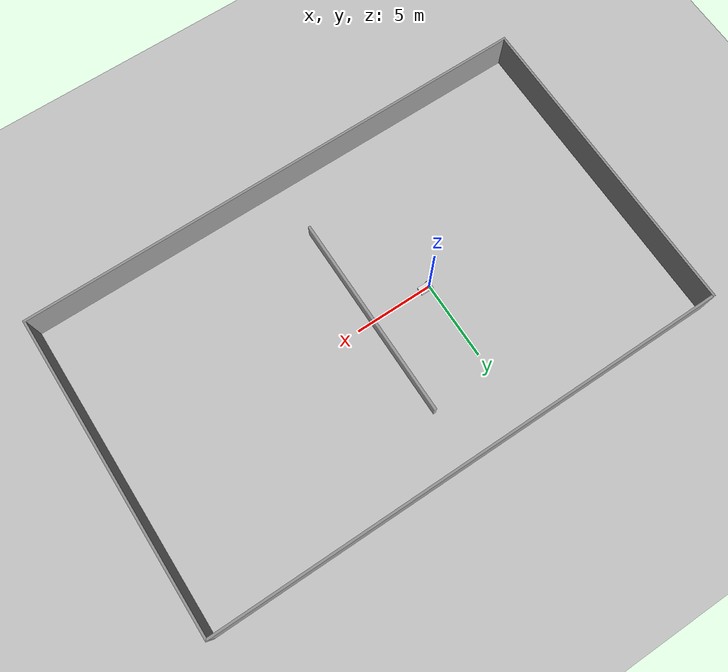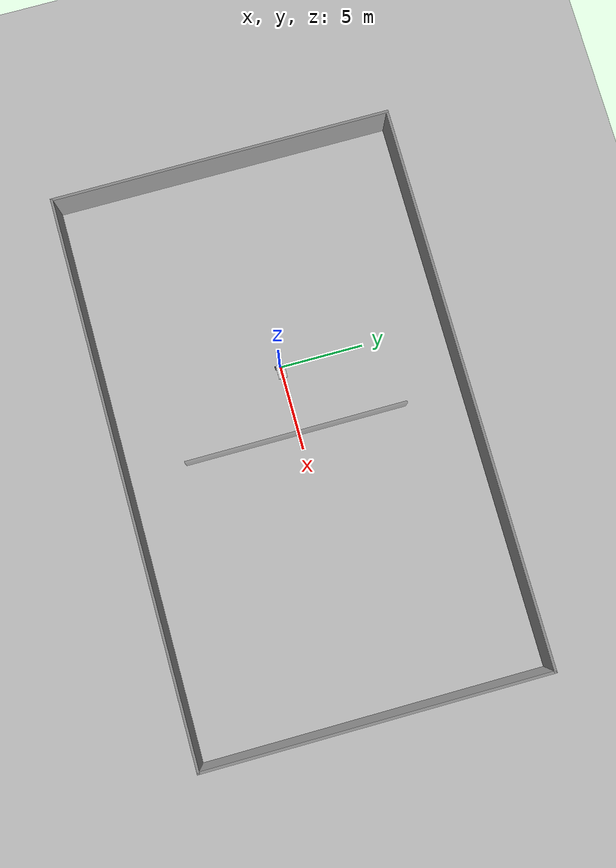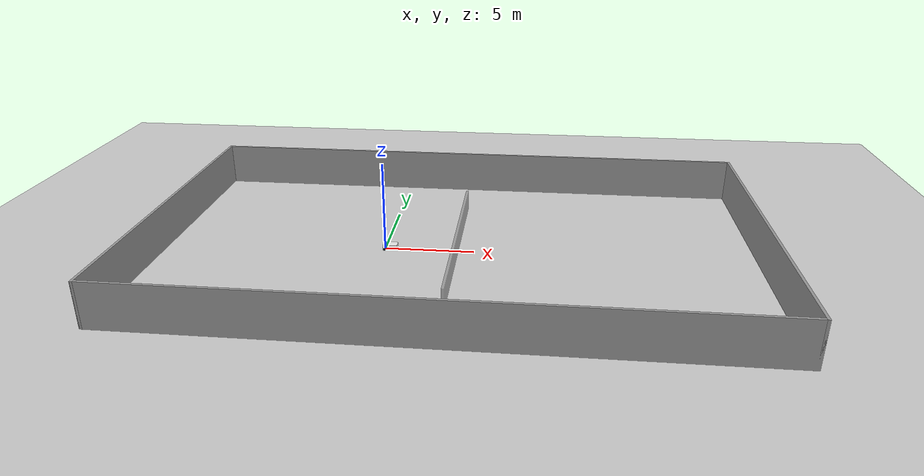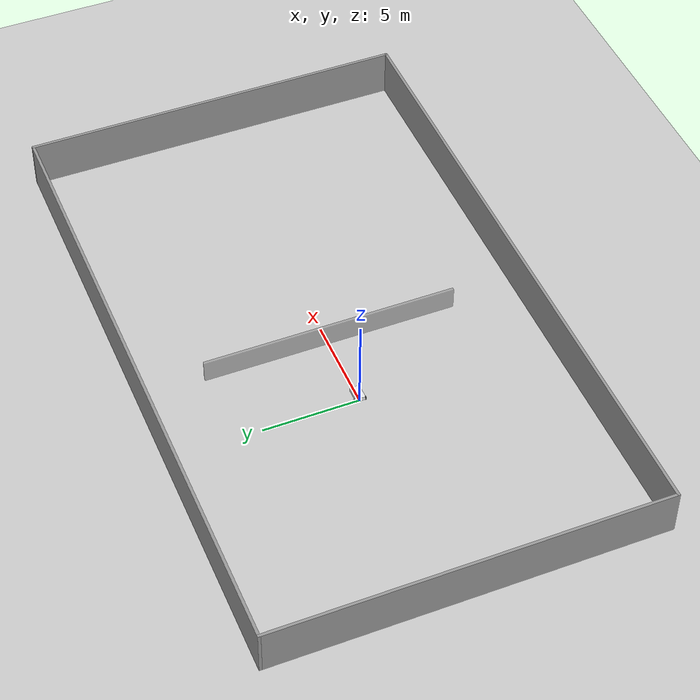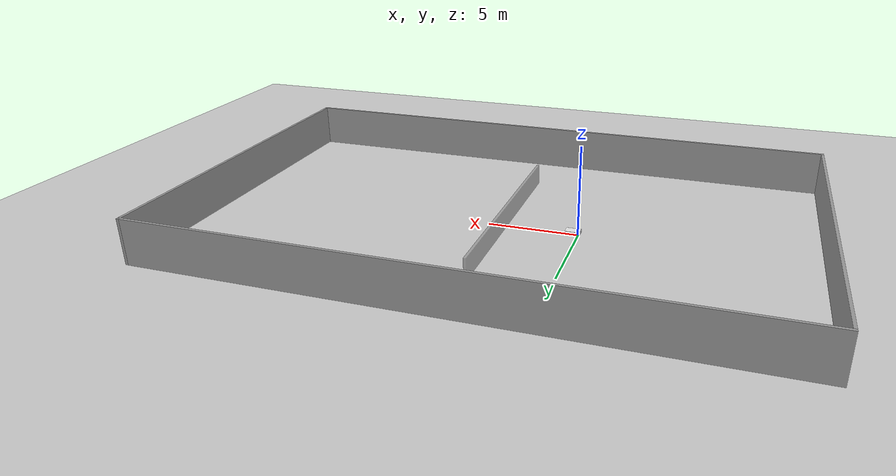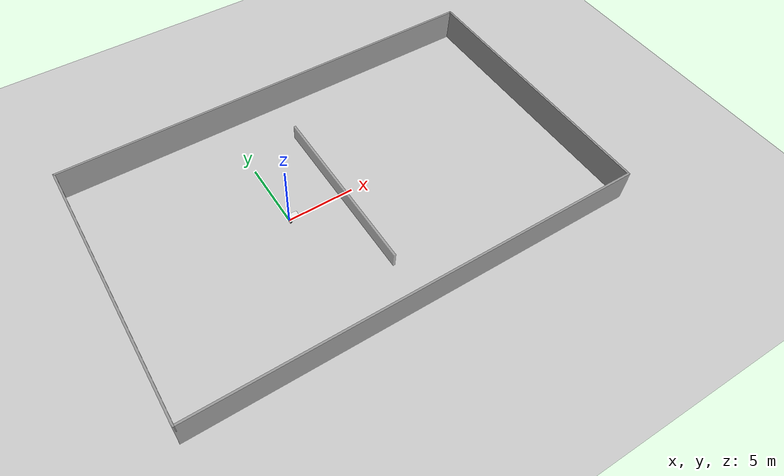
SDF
<sdf version="1.7">
 <world name="default">
  <light name="sun" type="directional">
   <pose>0 0 10 0 -0 0</pose>
   <diffuse>0.8 0.8 0.8 1</diffuse>
   <specular>0.2 0.2 0.2 1</specular>
   <attenuation>
    <range>1000</range>
    <constant>0.9</constant>
    <linear>0.01</linear>
    <quadratic>0.001</quadratic>
   </attenuation>
   <direction>-0.5 0.1 -0.9</direction>
   <spot><inner_angle>0</inner_angle><outer_angle>0</outer_angle><falloff>0</falloff></spot>
  </light>
  <model name="ground_plane">
   <static>1</static>
   <link name="link">
    <collision name="collision">
     <geometry><plane><normal>0 0 1</normal><size>100 100</size></plane></geometry>
     <surface>
      <contact><collide_bitmask>65535</collide_bitmask></contact>
      <friction><ode><mu>100</mu><mu2>50</mu2></ode></friction>
     </surface>
    </collision>
    <visual name="visual">
     <cast_shadows>0</cast_shadows>
     <geometry><plane><normal>0 0 1</normal><size>100 100</size></plane></geometry>
     <material>
      <script><uri>file://media/materials/scripts/gazebo.material</uri><name>Gazebo/Grey</name></script>
     </material>
    </visual>
   </link>
  </model>
  <gravity>0 0 -9.8</gravity>
  <magnetic_field>6e-06 2.3e-05 -4.2e-05</magnetic_field>
  <atmosphere type="adiabatic"/>
  <physics type="ode">
   <max_step_size>0.001</max_step_size>
   <real_time_factor>1</real_time_factor>
   <real_time_update_rate>1000</real_time_update_rate>
  </physics>
  <scene><ambient>0.4 0.4 0.4 1</ambient><background>0.7 0.7 0.7 1</background><shadows>1</shadows></scene>
  <audio><device>default</device></audio>
  <spherical_coordinates>
   <surface_model>EARTH_WGS84</surface_model>
   <latitude_deg>0</latitude_deg>
   <longitude_deg>0</longitude_deg>
   <elevation>0</elevation>
   <heading_deg>0</heading_deg>
  </spherical_coordinates>
  <model name="my_bot">
   <link name="base_link">
    <inertial>
     <pose>0.298077 0 0.10024 0 -0 0</pose>
     <mass>5.2</mass>
     <inertia>
      <ixx>0.123574</ixx>
      <ixy>0</ixy>
      <ixz>0.0053726</ixz>
      <iyy>0.299055</iyy>
      <iyz>0</iyz>
      <izz>0.384339</izz>
     </inertia>
    </inertial>
    <collision name="base_link_fixed_joint_lump__chassis_collision">
     <pose>0.3 0 0.1 0 -0 0</pose>
     <geometry><box><size>0.8 0.5 0.2</size></box></geometry>
    </collision>
    <collision name="base_link_fixed_joint_lump__caster_wheel_collision_1">
     <pose>0.5 0 0 0 -0 0</pose>
     <geometry><sphere><radius>0.1</radius></sphere></geometry>
     <surface><friction><ode><mu>0.001</mu><mu2>0.001</mu2></ode></friction></surface>
    </collision>
    <collision name="base_link_fixed_joint_lump__laser_frame_collision_2">
     <pose>0 0 0.2125 0 -0 0</pose>
     <geometry><cylinder><length>0.04</length><radius>0.05</radius></cylinder></geometry>
    </collision>
    <visual name="base_link_fixed_joint_lump__chassis_visual">
     <pose>0.3 0 0.1 0 -0 0</pose>
     <geometry><box><size>0.8 0.5 0.2</size></box></geometry>
     <material>
      <script><name>Gazebo/White</name><uri>file://media/materials/scripts/gazebo.material</uri></script>
     </material>
    </visual>
    <visual name="base_link_fixed_joint_lump__caster_wheel_visual_1">
     <pose>0.5 0 0 0 -0 0</pose>
     <geometry><sphere><radius>0.1</radius></sphere></geometry>
     <material>
      <script><name>Gazebo/Black</name><uri>file://media/materials/scripts/gazebo.material</uri></script>
     </material>
    </visual>
    <visual name="base_link_fixed_joint_lump__laser_frame_visual_2">
     <pose>0 0 0.2125 0 -0 0</pose>
     <geometry><cylinder><length>0.04</length><radius>0.05</radius></cylinder></geometry>
     <material>
      <script><name>Gazebo/Red</name><uri>file://media/materials/scripts/gazebo.material</uri></script>
     </material>
    </visual>
    <sensor name="laser" type="ray">
     <visualize>1</visualize>
     <update_rate>10</update_rate>
     <ray>
      <scan>
       <horizontal>
        <samples>360</samples>
        <min_angle>-3.14</min_angle>
        <max_angle>3.14</max_angle>
        <resolution>1</resolution>
       </horizontal>
       <vertical><samples>1</samples><min_angle>0</min_angle><max_angle>0</max_angle></vertical>
      </scan>
      <range><min>0.3</min><max>8</max></range>
     </ray>
     <plugin name="laser_controller" filename="libgazebo_ros_ray_sensor.so">
      <ros><argument>~/out:=scan</argument></ros>
      <output_type>sensor_msgs/LaserScan</output_type>
      <frame_name>laser_frame</frame_name>
     </plugin>
     <pose>0 0 0.2125 0 -0 0</pose>
    </sensor>
   </link>
   <joint name="left_wheel_joint" type="revolute">
    <pose relative_to="base_link">0 0.279 0 -1.5708 0 0</pose>
    <parent>base_link</parent>
    <child>left_wheel</child>
    <axis>
     <xyz>0 0 1</xyz>
     <limit><lower>-1e+16</lower><upper>1e+16</upper></limit>
     <dynamics><spring_reference>0</spring_reference><spring_stiffness>0</spring_stiffness></dynamics>
    </axis>
   </joint>
   <link name="left_wheel">
    <pose relative_to="left_wheel_joint">0 0 0 0 -0 0</pose>
    <inertial>
     <mass>0.1</mass>
     <inertia>
      <ixx>0.000290833</ixx>
      <ixy>0</ixy>
      <ixz>0</ixz>
      <iyy>0.000290833</iyy>
      <iyz>0</iyz>
      <izz>0.0005</izz>
     </inertia>
    </inertial>
    <collision name="left_wheel_collision">
     <geometry><cylinder><length>0.07</length><radius>0.1</radius></cylinder></geometry>
    </collision>
    <visual name="left_wheel_visual">
     <geometry><cylinder><length>0.07</length><radius>0.1</radius></cylinder></geometry>
     <material>
      <script><name>Gazebo/Black</name><uri>file://media/materials/scripts/gazebo.material</uri></script>
     </material>
    </visual>
   </link>
   <joint name="right_wheel_joint" type="revolute">
    <pose relative_to="base_link">0 -0.279 0 1.5708 -0 0</pose>
    <parent>base_link</parent>
    <child>right_wheel</child>
    <axis>
     <xyz>0 0 -1</xyz>
     <limit><lower>-1e+16</lower><upper>1e+16</upper></limit>
     <dynamics><spring_reference>0</spring_reference><spring_stiffness>0</spring_stiffness></dynamics>
    </axis>
   </joint>
   <link name="right_wheel">
    <pose relative_to="right_wheel_joint">0 0 0 0 -0 0</pose>
    <inertial>
     <mass>0.1</mass>
     <inertia>
      <ixx>0.000290833</ixx>
      <ixy>0</ixy>
      <ixz>0</ixz>
      <iyy>0.000290833</iyy>
      <iyz>0</iyz>
      <izz>0.0005</izz>
     </inertia>
    </inertial>
    <collision name="right_wheel_collision">
     <geometry><cylinder><length>0.07</length><radius>0.1</radius></cylinder></geometry>
    </collision>
    <visual name="right_wheel_visual">
     <geometry><cylinder><length>0.07</length><radius>0.1</radius></cylinder></geometry>
     <material>
      <script><name>Gazebo/Black</name><uri>file://media/materials/scripts/gazebo.material</uri></script>
     </material>
    </visual>
   </link>
   <static>0</static>
   <plugin name="gazebo_ros2_control" filename="libgazebo_ros2_control.so">
    <parameters>/home/lars/dev-ws/install/Tennis_Bot/share/Tennis_Bot/config/my_controllers.yaml</parameters>
   </plugin>
   <pose>-0.011312 -0.000119 0.100001 0 2.1e-05 -8.6e-05</pose>
  </model>
  <model name="Tennis_Feld">
   <link name="Wall_0">
    <pose>-16.5 0 0 0 0 -1.5708</pose>
    <visual name="Wall_0_Visual">
     <pose>0 0 1.25 0 -0 0</pose>
     <geometry><box><size>20.15 0.15 2.5</size></box></geometry>
     <material>
      <script><uri>file://media/materials/scripts/gazebo.material</uri><name>Gazebo/Grey</name></script>
      <ambient>1 1 1 1</ambient>
      <shader type="pixel"/>
     </material>
     <meta><layer>0</layer></meta>
    </visual>
    <collision name="Wall_0_Collision">
     <pose>0 0 1.25 0 -0 0</pose>
     <geometry><box><size>20.15 0.15 2.5</size></box></geometry>
     <surface>
      <friction>
       <ode><mu>1</mu><mu2>1</mu2><fdir1>0 0 0</fdir1><slip1>0</slip1><slip2>0</slip2></ode>
       <torsional>
        <coefficient>1</coefficient>
        <patch_radius>0</patch_radius>
        <surface_radius>0</surface_radius>
        <use_patch_radius>1</use_patch_radius>
        <ode><slip>0</slip></ode>
       </torsional>
      </friction>
      <bounce><restitution_coefficient>0</restitution_coefficient><threshold>1e+06</threshold></bounce>
      <contact>
       <collide_without_contact>0</collide_without_contact>
       <collide_without_contact_bitmask>1</collide_without_contact_bitmask>
       <collide_bitmask>1</collide_bitmask>
       <ode>
        <soft_cfm>0</soft_cfm>
        <soft_erp>0.2</soft_erp>
        <kp>1e+13</kp>
        <kd>1</kd>
        <max_vel>0.01</max_vel>
        <min_depth>0</min_depth>
       </ode>
       <bullet>
        <split_impulse>1</split_impulse>
        <split_impulse_penetration_threshold>-0.01</split_impulse_penetration_threshold>
        <soft_cfm>0</soft_cfm>
        <soft_erp>0.2</soft_erp>
        <kp>1e+13</kp>
        <kd>1</kd>
       </bullet>
      </contact>
     </surface>
    </collision>
   </link>
   <link name="Wall_1">
    <pose>0 -10 0 0 -0 0</pose>
    <visual name="Wall_1_Visual">
     <pose>0 0 1.25 0 -0 0</pose>
     <geometry><box><size>33.15 0.15 2.5</size></box></geometry>
     <material>
      <script><uri>file://media/materials/scripts/gazebo.material</uri><name>Gazebo/Grey</name></script>
      <ambient>1 1 1 1</ambient>
      <shader type="pixel"/>
     </material>
     <meta><layer>0</layer></meta>
    </visual>
    <collision name="Wall_1_Collision">
     <pose>0 0 1.25 0 -0 0</pose>
     <geometry><box><size>33.15 0.15 2.5</size></box></geometry>
     <surface>
      <friction>
       <ode><mu>1</mu><mu2>1</mu2><fdir1>0 0 0</fdir1><slip1>0</slip1><slip2>0</slip2></ode>
       <torsional>
        <coefficient>1</coefficient>
        <patch_radius>0</patch_radius>
        <surface_radius>0</surface_radius>
        <use_patch_radius>1</use_patch_radius>
        <ode><slip>0</slip></ode>
       </torsional>
      </friction>
      <bounce><restitution_coefficient>0</restitution_coefficient><threshold>1e+06</threshold></bounce>
      <contact>
       <collide_without_contact>0</collide_without_contact>
       <collide_without_contact_bitmask>1</collide_without_contact_bitmask>
       <collide_bitmask>1</collide_bitmask>
       <ode>
        <soft_cfm>0</soft_cfm>
        <soft_erp>0.2</soft_erp>
        <kp>1e+13</kp>
        <kd>1</kd>
        <max_vel>0.01</max_vel>
        <min_depth>0</min_depth>
       </ode>
       <bullet>
        <split_impulse>1</split_impulse>
        <split_impulse_penetration_threshold>-0.01</split_impulse_penetration_threshold>
        <soft_cfm>0</soft_cfm>
        <soft_erp>0.2</soft_erp>
        <kp>1e+13</kp>
        <kd>1</kd>
       </bullet>
      </contact>
     </surface>
    </collision>
   </link>
   <link name="Wall_2">
    <pose>16.5 0 0 0 -0 1.5708</pose>
    <inertial>
     <mass>1</mass>
     <inertia><ixx>1</ixx><ixy>0</ixy><ixz>0</ixz><iyy>1</iyy><iyz>0</iyz><izz>1</izz></inertia>
    </inertial>
    <visual name="Wall_2_Visual">
     <pose>0 0 1.25 0 -0 0</pose>
     <geometry><box><size>20.15 0.15 2.5</size></box></geometry>
     <material>
      <script><uri>file://media/materials/scripts/gazebo.material</uri><name>Gazebo/Grey</name></script>
      <ambient>1 1 1 1</ambient>
      <shader type="pixel"><normal_map>__default__</normal_map></shader>
     </material>
     <meta><layer>0</layer></meta>
    </visual>
    <collision name="Wall_2_Collision">
     <pose>0 0 1.25 0 -0 0</pose>
     <geometry><box><size>20.15 0.15 2.5</size></box></geometry>
     <surface>
      <friction>
       <ode><mu>1</mu><mu2>1</mu2><fdir1>0 0 0</fdir1><slip1>0</slip1><slip2>0</slip2></ode>
       <torsional>
        <coefficient>1</coefficient>
        <patch_radius>0</patch_radius>
        <surface_radius>0</surface_radius>
        <use_patch_radius>1</use_patch_radius>
        <ode><slip>0</slip></ode>
       </torsional>
      </friction>
      <bounce><restitution_coefficient>0</restitution_coefficient><threshold>1e+06</threshold></bounce>
      <contact>
       <collide_without_contact>0</collide_without_contact>
       <collide_without_contact_bitmask>1</collide_without_contact_bitmask>
       <collide_bitmask>1</collide_bitmask>
       <ode>
        <soft_cfm>0</soft_cfm>
        <soft_erp>0.2</soft_erp>
        <kp>1e+13</kp>
        <kd>1</kd>
        <max_vel>0.01</max_vel>
        <min_depth>0</min_depth>
       </ode>
       <bullet>
        <split_impulse>1</split_impulse>
        <split_impulse_penetration_threshold>-0.01</split_impulse_penetration_threshold>
        <soft_cfm>0</soft_cfm>
        <soft_erp>0.2</soft_erp>
        <kp>1e+13</kp>
        <kd>1</kd>
       </bullet>
      </contact>
     </surface>
    </collision>
   </link>
   <link name="Wall_3">
    <pose>0 10 0 0 -0 3.14159</pose>
    <inertial>
     <mass>1</mass>
     <inertia><ixx>1</ixx><ixy>0</ixy><ixz>0</ixz><iyy>1</iyy><iyz>0</iyz><izz>1</izz></inertia>
    </inertial>
    <visual name="Wall_3_Visual">
     <pose>0 0 1.25 0 -0 0</pose>
     <geometry><box><size>33.15 0.15 2.5</size></box></geometry>
     <material>
      <script><uri>file://media/materials/scripts/gazebo.material</uri><name>Gazebo/Grey</name></script>
      <ambient>1 1 1 1</ambient>
      <shader type="pixel"><normal_map>__default__</normal_map></shader>
      <diffuse>0.7 0.7 0.7 1</diffuse>
      <specular>0.01 0.01 0.01 1</specular>
      <emissive>0 0 0 1</emissive>
     </material>
     <meta><layer>0</layer></meta>
    </visual>
    <collision name="Wall_3_Collision">
     <pose>0 0 1.25 0 -0 0</pose>
     <geometry><box><size>33.15 0.15 2.5</size></box></geometry>
     <surface>
      <friction>
       <ode><mu>1</mu><mu2>1</mu2><fdir1>0 0 0</fdir1><slip1>0</slip1><slip2>0</slip2></ode>
       <torsional>
        <coefficient>1</coefficient>
        <patch_radius>0</patch_radius>
        <surface_radius>0</surface_radius>
        <use_patch_radius>1</use_patch_radius>
        <ode><slip>0</slip></ode>
       </torsional>
      </friction>
      <bounce><restitution_coefficient>0</restitution_coefficient><threshold>1e+06</threshold></bounce>
      <contact>
       <collide_without_contact>0</collide_without_contact>
       <collide_without_contact_bitmask>1</collide_without_contact_bitmask>
       <collide_bitmask>1</collide_bitmask>
       <ode>
        <soft_cfm>0</soft_cfm>
        <soft_erp>0.2</soft_erp>
        <kp>1e+13</kp>
        <kd>1</kd>
        <max_vel>0.01</max_vel>
        <min_depth>0</min_depth>
       </ode>
       <bullet>
        <split_impulse>1</split_impulse>
        <split_impulse_penetration_threshold>-0.01</split_impulse_penetration_threshold>
        <soft_cfm>0</soft_cfm>
        <soft_erp>0.2</soft_erp>
        <kp>1e+13</kp>
        <kd>1</kd>
       </bullet>
      </contact>
     </surface>
    </collision>
   </link>
   <link name="Wall_5">
    <pose>0 0 0 0 0 -1.5708</pose>
    <inertial>
     <mass>1</mass>
     <inertia><ixx>1</ixx><ixy>0</ixy><ixz>0</ixz><iyy>1</iyy><iyz>0</iyz><izz>1</izz></inertia>
    </inertial>
    <visual name="Wall_5_Visual">
     <pose>0 0 0.6 0 -0 0</pose>
     <geometry><box><size>13.15 0.15 1.2</size></box></geometry>
     <material>
      <script><uri>file://media/materials/scripts/gazebo.material</uri><name>Gazebo/Grey</name></script>
      <ambient>1 1 1 1</ambient>
      <shader type="pixel"><normal_map>__default__</normal_map></shader>
      <diffuse>0.7 0.7 0.7 1</diffuse>
      <specular>0.01 0.01 0.01 1</specular>
      <emissive>0 0 0 1</emissive>
     </material>
     <meta><layer>0</layer></meta>
     <transparency>0.3</transparency>
    </visual>
    <collision name="Wall_5_Collision">
     <pose>0 0 0.6 0 -0 0</pose>
     <geometry><box><size>13.15 0.15 1.2</size></box></geometry>
     <surface>
      <friction>
       <ode><mu>1</mu><mu2>1</mu2><fdir1>0 0 0</fdir1><slip1>0</slip1><slip2>0</slip2></ode>
       <torsional>
        <coefficient>1</coefficient>
        <patch_radius>0</patch_radius>
        <surface_radius>0</surface_radius>
        <use_patch_radius>1</use_patch_radius>
        <ode><slip>0</slip></ode>
       </torsional>
      </friction>
      <bounce><restitution_coefficient>0</restitution_coefficient><threshold>1e+06</threshold></bounce>
      <contact>
       <collide_without_contact>0</collide_without_contact>
       <collide_without_contact_bitmask>1</collide_without_contact_bitmask>
       <collide_bitmask>1</collide_bitmask>
       <ode>
        <soft_cfm>0</soft_cfm>
        <soft_erp>0.2</soft_erp>
        <kp>1e+13</kp>
        <kd>1</kd>
        <max_vel>0.01</max_vel>
        <min_depth>0</min_depth>
       </ode>
       <bullet>
        <split_impulse>1</split_impulse>
        <split_impulse_penetration_threshold>-0.01</split_impulse_penetration_threshold>
        <soft_cfm>0</soft_cfm>
        <soft_erp>0.2</soft_erp>
        <kp>1e+13</kp>
        <kd>1</kd>
       </bullet>
      </contact>
     </surface>
    </collision>
   </link>
   <static>1</static>
   <pose>4.06456 -0.145035 0 0 -0 0</pose>
  </model>
 </world>
</sdf>
